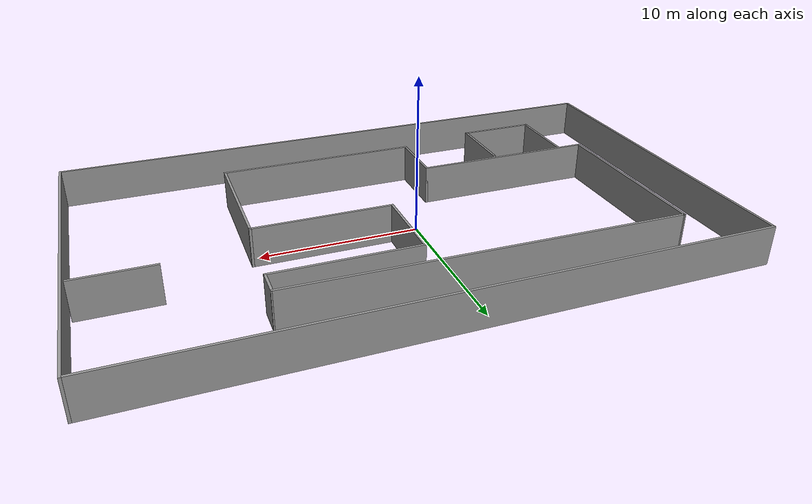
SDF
<?xml version='1.0'?>
<sdf version='1.6'>
  <model name='indoor'>
    <pose frame=''>1.55125 -0.136388 0 0 -0 0</pose>
    <link name='Wall_10'>
      <collision name='Wall_10_Collision'>
        <geometry>
          <box>
            <size>38.25 0.15 2.5</size>
          </box>
        </geometry>
        <pose frame=''>0 0 1.25 0 -0 0</pose>
      </collision>
      <visual name='Wall_10_Visual'>
        <pose frame=''>0 0 1.25 0 -0 0</pose>
        <geometry>
          <box>
            <size>38.25 0.15 2.5</size>
          </box>
        </geometry>
        <material>
          <script>
            <uri>file://media/materials/scripts/gazebo.material</uri>
            <name>Gazebo/Grey</name>
          </script>
          <ambient>1 1 1 1</ambient>
        </material>
        <meta>
          <layer>0</layer>
        </meta>
      </visual>
      <pose frame=''>1e-06 11.05 0 0 -0 3.14159</pose>
    </link>
    <link name='Wall_12'>
      <collision name='Wall_12_Collision'>
        <geometry>
          <box>
            <size>11.5 0.15 2.5</size>
          </box>
        </geometry>
        <pose frame=''>0 0 1.25 0 -0 0</pose>
      </collision>
      <visual name='Wall_12_Visual'>
        <pose frame=''>0 0 1.25 0 -0 0</pose>
        <geometry>
          <box>
            <size>11.5 0.15 2.5</size>
          </box>
        </geometry>
        <material>
          <script>
            <uri>file://media/materials/scripts/gazebo.material</uri>
            <name>Gazebo/Grey</name>
          </script>
          <ambient>1 1 1 1</ambient>
        </material>
        <meta>
          <layer>0</layer>
        </meta>
      </visual>
      <pose frame=''>-15.2375 2.35899 0 0 -0 -1.5708</pose>
    </link>
    <link name='Wall_13'>
      <collision name='Wall_13_Collision'>
        <geometry>
          <box>
            <size>11.75 0.15 2.5</size>
          </box>
        </geometry>
        <pose frame=''>0 0 1.25 0 -0 0</pose>
      </collision>
      <visual name='Wall_13_Visual'>
        <pose frame=''>0 0 1.25 0 -0 0</pose>
        <geometry>
          <box>
            <size>11.75 0.15 2.5</size>
          </box>
        </geometry>
        <material>
          <script>
            <uri>file://media/materials/scripts/gazebo.material</uri>
            <name>Gazebo/Grey</name>
          </script>
          <ambient>1 1 1 1</ambient>
        </material>
        <meta>
          <layer>0</layer>
        </meta>
      </visual>
      <pose frame=''>-9.43747 -3.31601 0 0 -0 0</pose>
    </link>
    <link name='Wall_14'>
      <collision name='Wall_14_Collision'>
        <geometry>
          <box>
            <size>4 0.15 2.5</size>
          </box>
        </geometry>
        <pose frame=''>0 0 1.25 0 -0 0</pose>
      </collision>
      <visual name='Wall_14_Visual'>
        <pose frame=''>0 0 1.25 0 -0 0</pose>
        <geometry>
          <box>
            <size>4 0.15 2.5</size>
          </box>
        </geometry>
        <material>
          <script>
            <uri>file://media/materials/scripts/gazebo.material</uri>
            <name>Gazebo/Grey</name>
          </script>
          <ambient>1 1 1 1</ambient>
        </material>
        <meta>
          <layer>0</layer>
        </meta>
      </visual>
      <pose frame=''>-3.63747 -5.24101 0 0 -0 -1.5708</pose>
    </link>
    <link name='Wall_15'>
      <collision name='Wall_15_Collision'>
        <geometry>
          <box>
            <size>12.75 0.15 2.5</size>
          </box>
        </geometry>
        <pose frame=''>0 0 1.25 0 -0 0</pose>
      </collision>
      <visual name='Wall_15_Visual'>
        <pose frame=''>0 0 1.25 0 -0 0</pose>
        <geometry>
          <box>
            <size>12.75 0.15 2.5</size>
          </box>
        </geometry>
        <material>
          <script>
            <uri>file://media/materials/scripts/gazebo.material</uri>
            <name>Gazebo/Grey</name>
          </script>
          <ambient>1 1 1 1</ambient>
        </material>
        <meta>
          <layer>0</layer>
        </meta>
      </visual>
      <pose frame=''>2.66253 -7.16601 0 0 -0 0</pose>
    </link>
    <link name='Wall_16'>
      <collision name='Wall_16_Collision'>
        <geometry>
          <box>
            <size>8.25 0.15 2.5</size>
          </box>
        </geometry>
        <pose frame=''>0 0 1.25 0 -0 0</pose>
      </collision>
      <visual name='Wall_16_Visual'>
        <pose frame=''>0 0 1.25 0 -0 0</pose>
        <geometry>
          <box>
            <size>8.25 0.15 2.5</size>
          </box>
        </geometry>
        <material>
          <script>
            <uri>file://media/materials/scripts/gazebo.material</uri>
            <name>Gazebo/Grey</name>
          </script>
          <ambient>1 1 1 1</ambient>
        </material>
        <meta>
          <layer>0</layer>
        </meta>
      </visual>
      <pose frame=''>8.96253 -3.11601 0 0 -0 1.5708</pose>
    </link>
    <link name='Wall_17'>
      <collision name='Wall_17_Collision'>
        <geometry>
          <box>
            <size>8.75 0.15 2.5</size>
          </box>
        </geometry>
        <pose frame=''>0 0 1.25 0 -0 0</pose>
      </collision>
      <visual name='Wall_17_Visual'>
        <pose frame=''>0 0 1.25 0 -0 0</pose>
        <geometry>
          <box>
            <size>8.75 0.15 2.5</size>
          </box>
        </geometry>
        <material>
          <script>
            <uri>file://media/materials/scripts/gazebo.material</uri>
            <name>Gazebo/Grey</name>
          </script>
          <ambient>1 1 1 1</ambient>
        </material>
        <meta>
          <layer>0</layer>
        </meta>
      </visual>
      <pose frame=''>4.66253 0.933993 0 0 -0 3.14159</pose>
    </link>
    <link name='Wall_18'>
      <collision name='Wall_18_Collision'>
        <geometry>
          <box>
            <size>5.25 0.15 2.5</size>
          </box>
        </geometry>
        <pose frame=''>0 0 1.25 0 -0 0</pose>
      </collision>
      <visual name='Wall_18_Visual'>
        <pose frame=''>0 0 1.25 0 -0 0</pose>
        <geometry>
          <box>
            <size>5.25 0.15 2.5</size>
          </box>
        </geometry>
        <material>
          <script>
            <uri>file://media/materials/scripts/gazebo.material</uri>
            <name>Gazebo/Grey</name>
          </script>
          <ambient>1 1 1 1</ambient>
        </material>
        <meta>
          <layer>0</layer>
        </meta>
      </visual>
      <pose frame=''>0.362533 3.48399 0 0 -0 1.5708</pose>
    </link>
    <link name='Wall_19'>
      <collision name='Wall_19_Collision'>
        <geometry>
          <box>
            <size>9 0.15 2.5</size>
          </box>
        </geometry>
        <pose frame=''>0 0 1.25 0 -0 0</pose>
      </collision>
      <visual name='Wall_19_Visual'>
        <pose frame=''>0 0 1.25 0 -0 0</pose>
        <geometry>
          <box>
            <size>9 0.15 2.5</size>
          </box>
        </geometry>
        <material>
          <script>
            <uri>file://media/materials/scripts/gazebo.material</uri>
            <name>Gazebo/Grey</name>
          </script>
          <ambient>1 1 1 1</ambient>
        </material>
        <meta>
          <layer>0</layer>
        </meta>
      </visual>
      <pose frame=''>4.78753 6.03399 0 0 -0 0</pose>
    </link>
    <link name='Wall_20'>
      <collision name='Wall_20_Collision'>
        <geometry>
          <box>
            <size>1.75 0.15 2.5</size>
          </box>
        </geometry>
        <pose frame=''>0 0 1.25 0 -0 0</pose>
      </collision>
      <visual name='Wall_20_Visual'>
        <pose frame=''>0 0 1.25 0 -0 0</pose>
        <geometry>
          <box>
            <size>1.75 0.15 2.5</size>
          </box>
        </geometry>
        <material>
          <script>
            <uri>file://media/materials/scripts/gazebo.material</uri>
            <name>Gazebo/Grey</name>
          </script>
          <ambient>1 1 1 1</ambient>
        </material>
        <meta>
          <layer>0</layer>
        </meta>
      </visual>
      <pose frame=''>9.21253 6.83399 0 0 -0 1.5708</pose>
    </link>
    <link name='Wall_21'>
      <collision name='Wall_21_Collision'>
        <geometry>
          <box>
            <size>24.6033 0.15 2.5</size>
          </box>
        </geometry>
        <pose frame=''>0 0 1.25 0 -0 0</pose>
      </collision>
      <visual name='Wall_21_Visual'>
        <pose frame=''>0 0 1.25 0 -0 0</pose>
        <geometry>
          <box>
            <size>24.6033 0.15 2.5</size>
          </box>
        </geometry>
        <material>
          <script>
            <uri>file://media/materials/scripts/gazebo.material</uri>
            <name>Gazebo/Grey</name>
          </script>
          <ambient>1 1 1 1</ambient>
        </material>
        <meta>
          <layer>0</layer>
        </meta>
      </visual>
      <pose frame=''>-3.01247 7.83399 0 0 -0 3.12523</pose>
    </link>
    <link name='Wall_23'>
      <collision name='Wall_23_Collision'>
        <geometry>
          <box>
            <size>4.75 0.15 2.5</size>
          </box>
        </geometry>
        <pose frame=''>0 0 1.25 0 -0 0</pose>
      </collision>
      <visual name='Wall_23_Visual'>
        <pose frame=''>0 0 1.25 0 -0 0</pose>
        <geometry>
          <box>
            <size>4.75 0.15 2.5</size>
          </box>
        </geometry>
        <material>
          <script>
            <uri>file://media/materials/scripts/gazebo.material</uri>
            <name>Gazebo/Grey</name>
          </script>
          <ambient>1 1 1 1</ambient>
        </material>
        <meta>
          <layer>0</layer>
        </meta>
      </visual>
      <pose frame=''>16.5014 3.11429 0 0 -0 0</pose>
    </link>
    <link name='Wall_25'>
      <collision name='Wall_25_Collision'>
        <geometry>
          <box>
            <size>4.75 0.15 2.5</size>
          </box>
        </geometry>
        <pose frame=''>0 0 1.25 0 -0 0</pose>
      </collision>
      <visual name='Wall_25_Visual'>
        <pose frame=''>0 0 1.25 0 -0 0</pose>
        <geometry>
          <box>
            <size>4.75 0.15 2.5</size>
          </box>
        </geometry>
        <material>
          <script>
            <uri>file://media/materials/scripts/gazebo.material</uri>
            <name>Gazebo/Grey</name>
          </script>
          <ambient>1 1 1 1</ambient>
        </material>
        <meta>
          <layer>0</layer>
        </meta>
      </visual>
      <pose frame=''>-13.6033 -5.74024 0 0 -0 -1.5708</pose>
    </link>
    <link name='Wall_26'>
      <collision name='Wall_26_Collision'>
        <geometry>
          <box>
            <size>5 0.15 2.5</size>
          </box>
        </geometry>
        <pose frame=''>0 0 1.25 0 -0 0</pose>
      </collision>
      <visual name='Wall_26_Visual'>
        <pose frame=''>0 0 1.25 0 -0 0</pose>
        <geometry>
          <box>
            <size>5 0.15 2.5</size>
          </box>
        </geometry>
        <material>
          <script>
            <uri>file://media/materials/scripts/gazebo.material</uri>
            <name>Gazebo/Grey</name>
          </script>
          <ambient>1 1 1 1</ambient>
        </material>
        <meta>
          <layer>0</layer>
        </meta>
      </visual>
      <pose frame=''>-11.1783 -8.04024 0 0 -0 0</pose>
    </link>
    <link name='Wall_27'>
      <collision name='Wall_27_Collision'>
        <geometry>
          <box>
            <size>4.5 0.15 2.5</size>
          </box>
        </geometry>
        <pose frame=''>0 0 1.25 0 -0 0</pose>
      </collision>
      <visual name='Wall_27_Visual'>
        <pose frame=''>0 0 1.25 0 -0 0</pose>
        <geometry>
          <box>
            <size>4.5 0.15 2.5</size>
          </box>
        </geometry>
        <material>
          <script>
            <uri>file://media/materials/scripts/gazebo.material</uri>
            <name>Gazebo/Grey</name>
          </script>
          <ambient>1 1 1 1</ambient>
        </material>
        <meta>
          <layer>0</layer>
        </meta>
      </visual>
      <pose frame=''>-8.75329 -5.86524 0 0 -0 1.5708</pose>
    </link>
    <link name='Wall_7'>
      <collision name='Wall_7_Collision'>
        <geometry>
          <box>
            <size>22.25 0.15 2.5</size>
          </box>
        </geometry>
        <pose frame=''>0 0 1.25 0 -0 0</pose>
      </collision>
      <visual name='Wall_7_Visual'>
        <pose frame=''>0 0 1.25 0 -0 0</pose>
        <geometry>
          <box>
            <size>22.25 0.15 2.5</size>
          </box>
        </geometry>
        <material>
          <script>
            <uri>file://media/materials/scripts/gazebo.material</uri>
            <name>Gazebo/Grey</name>
          </script>
          <ambient>1 1 1 1</ambient>
        </material>
        <meta>
          <layer>0</layer>
        </meta>
      </visual>
      <pose frame=''>-19.05 0 0 0 -0 -1.5708</pose>
    </link>
    <link name='Wall_8'>
      <collision name='Wall_8_Collision'>
        <geometry>
          <box>
            <size>38.25 0.15 2.5</size>
          </box>
        </geometry>
        <pose frame=''>0 0 1.25 0 -0 0</pose>
      </collision>
      <visual name='Wall_8_Visual'>
        <pose frame=''>0 0 1.25 0 -0 0</pose>
        <geometry>
          <box>
            <size>38.25 0.15 2.5</size>
          </box>
        </geometry>
        <material>
          <script>
            <uri>file://media/materials/scripts/gazebo.material</uri>
            <name>Gazebo/Grey</name>
          </script>
          <ambient>1 1 1 1</ambient>
        </material>
        <meta>
          <layer>0</layer>
        </meta>
      </visual>
      <pose frame=''>1e-06 -11.05 0 0 -0 0</pose>
    </link>
    <link name='Wall_9'>
      <collision name='Wall_9_Collision'>
        <geometry>
          <box>
            <size>22.25 0.15 2.5</size>
          </box>
        </geometry>
        <pose frame=''>0 0 1.25 0 -0 0</pose>
      </collision>
      <visual name='Wall_9_Visual'>
        <pose frame=''>0 0 1.25 0 -0 0</pose>
        <geometry>
          <box>
            <size>22.25 0.15 2.5</size>
          </box>
        </geometry>
        <material>
          <script>
            <uri>file://media/materials/scripts/gazebo.material</uri>
            <name>Gazebo/Grey</name>
          </script>
          <ambient>1 1 1 1</ambient>
        </material>
        <meta>
          <layer>0</layer>
        </meta>
      </visual>
      <pose frame=''>19.05 0 0 0 -0 1.5708</pose>
    </link>
    <static>1</static>
  </model>
</sdf>
